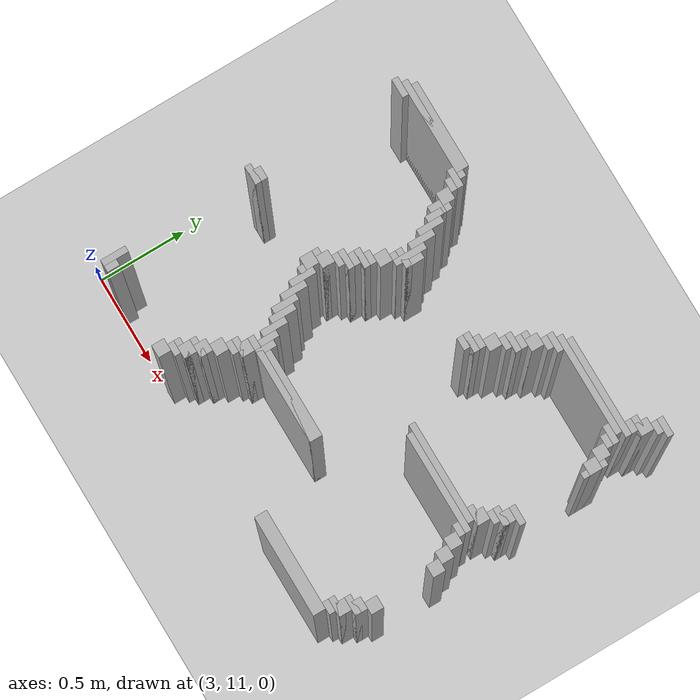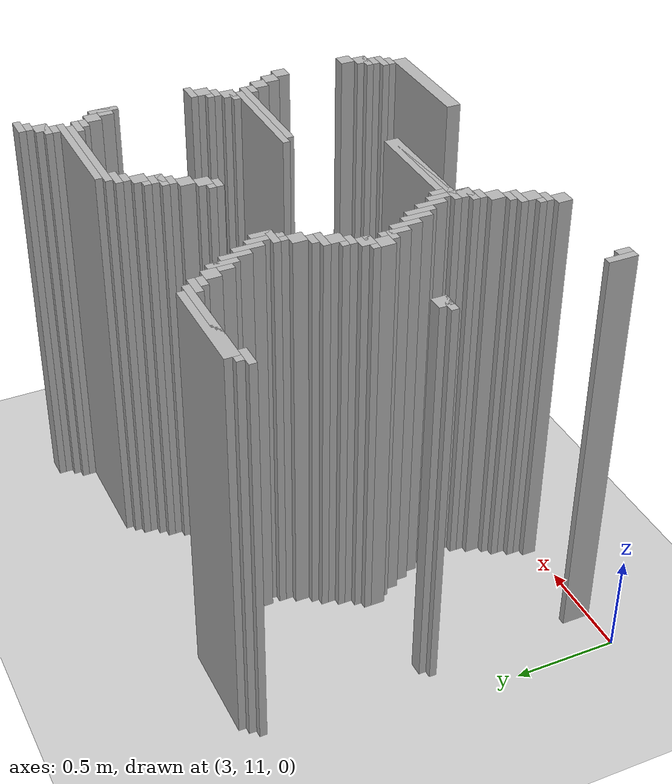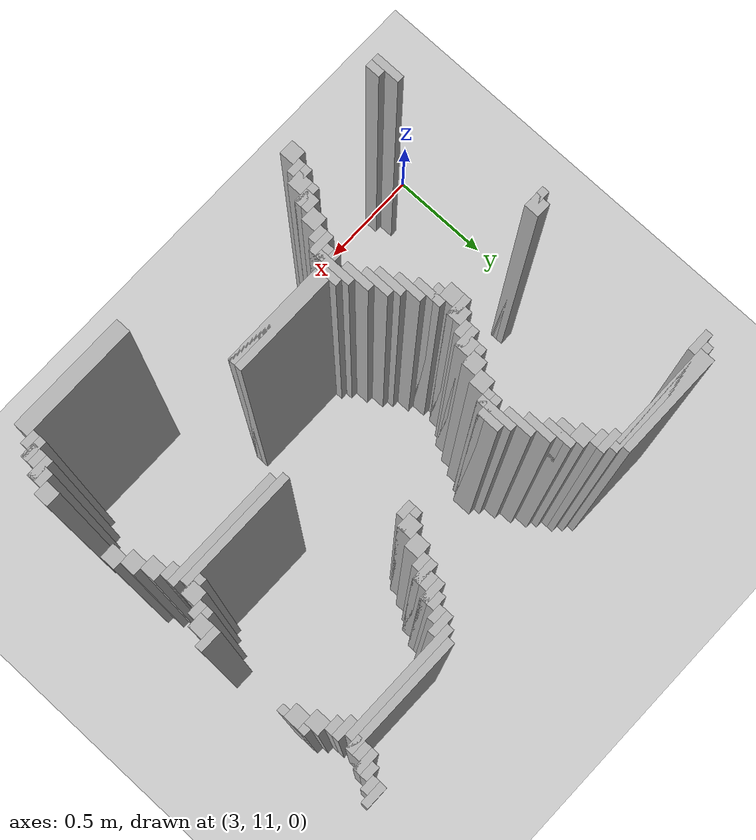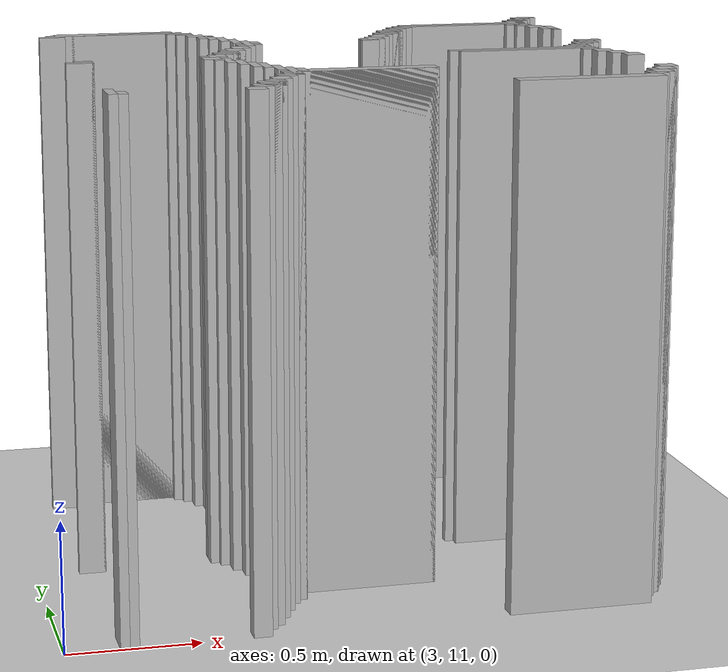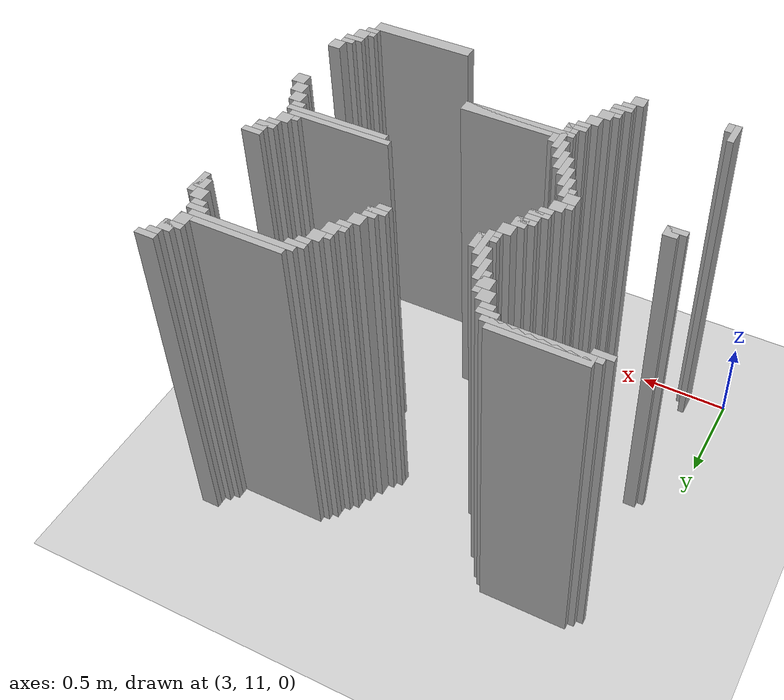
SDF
<sdf version="1.6">
 <world name="slam_world">
  <model name="ground_plane">
   <static>true</static>
   <link name="link">
    <collision name="collision">
     <geometry><plane><normal>0 0 1</normal><size>100 100</size></plane></geometry>
    </collision>
    <visual name="visual">
     <geometry><plane><normal>0 0 1</normal><size>100 100</size></plane></geometry>
     <material>
      <ambient>0.8 0.8 0.8 1</ambient>
      <diffuse>0.8 0.8 0.8 1</diffuse>
      <specular>0.8 0.8 0.8 1</specular>
     </material>
    </visual>
   </link>
  </model>
  <model name="wall_1448">
   <static>true</static>
   <pose>5.307424593967517 12.929234338747099 1.0 0 0 0</pose>
   <link name="link">
    <collision name="collision">
     <geometry><box><size>0.10440835266821345 0.03480278422273782 2.0</size></box></geometry>
    </collision>
    <visual name="visual">
     <geometry><box><size>0.10440835266821345 0.03480278422273782 2.0</size></box></geometry>
     <material><ambient>0.5 0.5 0.5 1</ambient><diffuse>0.7 0.7 0.7 1</diffuse></material>
    </visual>
   </link>
  </model>
  <model name="wall_1461">
   <static>true</static>
   <pose>5.290023201856148 12.894431554524362 1.0 0 0 0</pose>
   <link name="link">
    <collision name="collision">
     <geometry><box><size>0.06960556844547564 0.03480278422273782 2.0</size></box></geometry>
    </collision>
    <visual name="visual">
     <geometry><box><size>0.06960556844547564 0.03480278422273782 2.0</size></box></geometry>
     <material><ambient>0.5 0.5 0.5 1</ambient><diffuse>0.7 0.7 0.7 1</diffuse></material>
    </visual>
   </link>
  </model>
  <model name="wall_1471">
   <static>true</static>
   <pose>5.25522041763341 12.842227378190255 1.0 0 0 0</pose>
   <link name="link">
    <collision name="collision">
     <geometry><box><size>0.06960556844547564 0.06960556844547564 2.0</size></box></geometry>
    </collision>
    <visual name="visual">
     <geometry><box><size>0.06960556844547564 0.06960556844547564 2.0</size></box></geometry>
     <material><ambient>0.5 0.5 0.5 1</ambient><diffuse>0.7 0.7 0.7 1</diffuse></material>
    </visual>
   </link>
  </model>
  <model name="wall_1486">
   <static>true</static>
   <pose>5.237819025522041 12.824825986078885 1.0 0 0 0</pose>
   <link name="link">
    <collision name="collision">
     <geometry><box><size>0.10440835266821345 0.03480278422273782 2.0</size></box></geometry>
    </collision>
    <visual name="visual">
     <geometry><box><size>0.10440835266821345 0.03480278422273782 2.0</size></box></geometry>
     <material><ambient>0.5 0.5 0.5 1</ambient><diffuse>0.7 0.7 0.7 1</diffuse></material>
    </visual>
   </link>
  </model>
  <model name="wall_1499">
   <static>true</static>
   <pose>5.220417633410673 12.772621809744779 1.0 0 0 0</pose>
   <link name="link">
    <collision name="collision">
     <geometry><box><size>0.06960556844547564 0.06960556844547564 2.0</size></box></geometry>
    </collision>
    <visual name="visual">
     <geometry><box><size>0.06960556844547564 0.06960556844547564 2.0</size></box></geometry>
     <material><ambient>0.5 0.5 0.5 1</ambient><diffuse>0.7 0.7 0.7 1</diffuse></material>
    </visual>
   </link>
  </model>
  <model name="wall_1509">
   <static>true</static>
   <pose>3.480278422273782 12.737819025522041 1.0 0 0 0</pose>
   <link name="link">
    <collision name="collision">
     <geometry><box><size>0.4872389791183295 0.06960556844547564 2.0</size></box></geometry>
    </collision>
    <visual name="visual">
     <geometry><box><size>0.4872389791183295 0.06960556844547564 2.0</size></box></geometry>
     <material><ambient>0.5 0.5 0.5 1</ambient><diffuse>0.7 0.7 0.7 1</diffuse></material>
    </visual>
   </link>
  </model>
  <model name="wall_1510">
   <static>true</static>
   <pose>4.976798143851508 12.75522041763341 1.0 0 0 0</pose>
   <link name="link">
    <collision name="collision">
     <geometry><box><size>0.5568445475638051 0.03480278422273782 2.0</size></box></geometry>
    </collision>
    <visual name="visual">
     <geometry><box><size>0.5568445475638051 0.03480278422273782 2.0</size></box></geometry>
     <material><ambient>0.5 0.5 0.5 1</ambient><diffuse>0.7 0.7 0.7 1</diffuse></material>
    </visual>
   </link>
  </model>
  <model name="wall_1522">
   <static>true</static>
   <pose>3.480278422273782 12.720417633410673 1.0 0 0 0</pose>
   <link name="link">
    <collision name="collision">
     <geometry><box><size>0.5568445475638051 0.03480278422273782 2.0</size></box></geometry>
    </collision>
    <visual name="visual">
     <geometry><box><size>0.5568445475638051 0.03480278422273782 2.0</size></box></geometry>
     <material><ambient>0.5 0.5 0.5 1</ambient><diffuse>0.7 0.7 0.7 1</diffuse></material>
    </visual>
   </link>
  </model>
  <model name="wall_1523">
   <static>true</static>
   <pose>4.94199535962877 12.720417633410673 1.0 0 0 0</pose>
   <link name="link">
    <collision name="collision">
     <geometry><box><size>0.5568445475638051 0.03480278422273782 2.0</size></box></geometry>
    </collision>
    <visual name="visual">
     <geometry><box><size>0.5568445475638051 0.03480278422273782 2.0</size></box></geometry>
     <material><ambient>0.5 0.5 0.5 1</ambient><diffuse>0.7 0.7 0.7 1</diffuse></material>
    </visual>
   </link>
  </model>
  <model name="wall_1532">
   <static>true</static>
   <pose>3.219257540603248 12.685614849187935 1.0 0 0 0</pose>
   <link name="link">
    <collision name="collision">
     <geometry><box><size>0.10440835266821345 0.03480278422273782 2.0</size></box></geometry>
    </collision>
    <visual name="visual">
     <geometry><box><size>0.10440835266821345 0.03480278422273782 2.0</size></box></geometry>
     <material><ambient>0.5 0.5 0.5 1</ambient><diffuse>0.7 0.7 0.7 1</diffuse></material>
    </visual>
   </link>
  </model>
  <model name="wall_1533">
   <static>true</static>
   <pose>3.741299303944315 12.685614849187935 1.0 0 0 0</pose>
   <link name="link">
    <collision name="collision">
     <geometry><box><size>0.10440835266821345 0.03480278422273782 2.0</size></box></geometry>
    </collision>
    <visual name="visual">
     <geometry><box><size>0.10440835266821345 0.03480278422273782 2.0</size></box></geometry>
     <material><ambient>0.5 0.5 0.5 1</ambient><diffuse>0.7 0.7 0.7 1</diffuse></material>
    </visual>
   </link>
  </model>
  <model name="wall_1534">
   <static>true</static>
   <pose>4.6809744779582365 12.685614849187935 1.0 0 0 0</pose>
   <link name="link">
    <collision name="collision">
     <geometry><box><size>0.10440835266821345 0.03480278422273782 2.0</size></box></geometry>
    </collision>
    <visual name="visual">
     <geometry><box><size>0.10440835266821345 0.03480278422273782 2.0</size></box></geometry>
     <material><ambient>0.5 0.5 0.5 1</ambient><diffuse>0.7 0.7 0.7 1</diffuse></material>
    </visual>
   </link>
  </model>
  <model name="wall_1535">
   <static>true</static>
   <pose>5.203016241299304 12.685614849187935 1.0 0 0 0</pose>
   <link name="link">
    <collision name="collision">
     <geometry><box><size>0.10440835266821345 0.03480278422273782 2.0</size></box></geometry>
    </collision>
    <visual name="visual">
     <geometry><box><size>0.10440835266821345 0.03480278422273782 2.0</size></box></geometry>
     <material><ambient>0.5 0.5 0.5 1</ambient><diffuse>0.7 0.7 0.7 1</diffuse></material>
    </visual>
   </link>
  </model>
  <model name="wall_1546">
   <static>true</static>
   <pose>3.7587006960556844 12.650812064965196 1.0 0 0 0</pose>
   <link name="link">
    <collision name="collision">
     <geometry><box><size>0.06960556844547564 0.03480278422273782 2.0</size></box></geometry>
    </collision>
    <visual name="visual">
     <geometry><box><size>0.06960556844547564 0.03480278422273782 2.0</size></box></geometry>
     <material><ambient>0.5 0.5 0.5 1</ambient><diffuse>0.7 0.7 0.7 1</diffuse></material>
    </visual>
   </link>
  </model>
  <model name="wall_1547">
   <static>true</static>
   <pose>4.663573085846868 12.650812064965196 1.0 0 0 0</pose>
   <link name="link">
    <collision name="collision">
     <geometry><box><size>0.06960556844547564 0.03480278422273782 2.0</size></box></geometry>
    </collision>
    <visual name="visual">
     <geometry><box><size>0.06960556844547564 0.03480278422273782 2.0</size></box></geometry>
     <material><ambient>0.5 0.5 0.5 1</ambient><diffuse>0.7 0.7 0.7 1</diffuse></material>
    </visual>
   </link>
  </model>
  <model name="wall_1548">
   <static>true</static>
   <pose>5.220417633410673 12.650812064965196 1.0 0 0 0</pose>
   <link name="link">
    <collision name="collision">
     <geometry><box><size>0.06960556844547564 0.03480278422273782 2.0</size></box></geometry>
    </collision>
    <visual name="visual">
     <geometry><box><size>0.06960556844547564 0.03480278422273782 2.0</size></box></geometry>
     <material><ambient>0.5 0.5 0.5 1</ambient><diffuse>0.7 0.7 0.7 1</diffuse></material>
    </visual>
   </link>
  </model>
  <model name="wall_1558">
   <static>true</static>
   <pose>3.793503480278422 12.59860788863109 1.0 0 0 0</pose>
   <link name="link">
    <collision name="collision">
     <geometry><box><size>0.06960556844547564 0.06960556844547564 2.0</size></box></geometry>
    </collision>
    <visual name="visual">
     <geometry><box><size>0.06960556844547564 0.06960556844547564 2.0</size></box></geometry>
     <material><ambient>0.5 0.5 0.5 1</ambient><diffuse>0.7 0.7 0.7 1</diffuse></material>
    </visual>
   </link>
  </model>
  <model name="wall_1559">
   <static>true</static>
   <pose>4.6287703016241295 12.59860788863109 1.0 0 0 0</pose>
   <link name="link">
    <collision name="collision">
     <geometry><box><size>0.06960556844547564 0.06960556844547564 2.0</size></box></geometry>
    </collision>
    <visual name="visual">
     <geometry><box><size>0.06960556844547564 0.06960556844547564 2.0</size></box></geometry>
     <material><ambient>0.5 0.5 0.5 1</ambient><diffuse>0.7 0.7 0.7 1</diffuse></material>
    </visual>
   </link>
  </model>
  <model name="wall_1560">
   <static>true</static>
   <pose>5.25522041763341 12.59860788863109 1.0 0 0 0</pose>
   <link name="link">
    <collision name="collision">
     <geometry><box><size>0.06960556844547564 0.06960556844547564 2.0</size></box></geometry>
    </collision>
    <visual name="visual">
     <geometry><box><size>0.06960556844547564 0.06960556844547564 2.0</size></box></geometry>
     <material><ambient>0.5 0.5 0.5 1</ambient><diffuse>0.7 0.7 0.7 1</diffuse></material>
    </visual>
   </link>
  </model>
  <model name="wall_1571">
   <static>true</static>
   <pose>3.845707656612529 12.529002320185615 1.0 0 0 0</pose>
   <link name="link">
    <collision name="collision">
     <geometry><box><size>0.03480278422273782 0.13921113689095127 2.0</size></box></geometry>
    </collision>
    <visual name="visual">
     <geometry><box><size>0.03480278422273782 0.13921113689095127 2.0</size></box></geometry>
     <material><ambient>0.5 0.5 0.5 1</ambient><diffuse>0.7 0.7 0.7 1</diffuse></material>
    </visual>
   </link>
  </model>
  <model name="wall_1572">
   <static>true</static>
   <pose>4.611368909512761 12.581206496519721 1.0 0 0 0</pose>
   <link name="link">
    <collision name="collision">
     <geometry><box><size>0.10440835266821345 0.03480278422273782 2.0</size></box></geometry>
    </collision>
    <visual name="visual">
     <geometry><box><size>0.10440835266821345 0.03480278422273782 2.0</size></box></geometry>
     <material><ambient>0.5 0.5 0.5 1</ambient><diffuse>0.7 0.7 0.7 1</diffuse></material>
    </visual>
   </link>
  </model>
  <model name="wall_1573">
   <static>true</static>
   <pose>5.307424593967517 12.529002320185615 1.0 0 0 0</pose>
   <link name="link">
    <collision name="collision">
     <geometry><box><size>0.03480278422273782 0.13921113689095127 2.0</size></box></geometry>
    </collision>
    <visual name="visual">
     <geometry><box><size>0.03480278422273782 0.13921113689095127 2.0</size></box></geometry>
     <material><ambient>0.5 0.5 0.5 1</ambient><diffuse>0.7 0.7 0.7 1</diffuse></material>
    </visual>
   </link>
  </model>
  <model name="wall_1583">
   <static>true</static>
   <pose>3.82830626450116 12.529002320185615 1.0 0 0 0</pose>
   <link name="link">
    <collision name="collision">
     <geometry><box><size>0.06960556844547564 0.06960556844547564 2.0</size></box></geometry>
    </collision>
    <visual name="visual">
     <geometry><box><size>0.06960556844547564 0.06960556844547564 2.0</size></box></geometry>
     <material><ambient>0.5 0.5 0.5 1</ambient><diffuse>0.7 0.7 0.7 1</diffuse></material>
    </visual>
   </link>
  </model>
  <model name="wall_1584">
   <static>true</static>
   <pose>4.593967517401392 12.529002320185615 1.0 0 0 0</pose>
   <link name="link">
    <collision name="collision">
     <geometry><box><size>0.06960556844547564 0.06960556844547564 2.0</size></box></geometry>
    </collision>
    <visual name="visual">
     <geometry><box><size>0.06960556844547564 0.06960556844547564 2.0</size></box></geometry>
     <material><ambient>0.5 0.5 0.5 1</ambient><diffuse>0.7 0.7 0.7 1</diffuse></material>
    </visual>
   </link>
  </model>
  <model name="wall_1585">
   <static>true</static>
   <pose>5.290023201856148 12.529002320185615 1.0 0 0 0</pose>
   <link name="link">
    <collision name="collision">
     <geometry><box><size>0.06960556844547564 0.06960556844547564 2.0</size></box></geometry>
    </collision>
    <visual name="visual">
     <geometry><box><size>0.06960556844547564 0.06960556844547564 2.0</size></box></geometry>
     <material><ambient>0.5 0.5 0.5 1</ambient><diffuse>0.7 0.7 0.7 1</diffuse></material>
    </visual>
   </link>
  </model>
  <model name="wall_1595">
   <static>true</static>
   <pose>3.8805104408352666 12.459396751740138 1.0 0 0 0</pose>
   <link name="link">
    <collision name="collision">
     <geometry><box><size>0.03480278422273782 0.13921113689095127 2.0</size></box></geometry>
    </collision>
    <visual name="visual">
     <geometry><box><size>0.03480278422273782 0.13921113689095127 2.0</size></box></geometry>
     <material><ambient>0.5 0.5 0.5 1</ambient><diffuse>0.7 0.7 0.7 1</diffuse></material>
    </visual>
   </link>
  </model>
  <model name="wall_1596">
   <static>true</static>
   <pose>4.576566125290023 12.511600928074245 1.0 0 0 0</pose>
   <link name="link">
    <collision name="collision">
     <geometry><box><size>0.10440835266821345 0.03480278422273782 2.0</size></box></geometry>
    </collision>
    <visual name="visual">
     <geometry><box><size>0.10440835266821345 0.03480278422273782 2.0</size></box></geometry>
     <material><ambient>0.5 0.5 0.5 1</ambient><diffuse>0.7 0.7 0.7 1</diffuse></material>
    </visual>
   </link>
  </model>
  <model name="wall_1607">
   <static>true</static>
   <pose>4.559164733178654 12.476798143851507 1.0 0 0 0</pose>
   <link name="link">
    <collision name="collision">
     <geometry><box><size>0.06960556844547564 0.03480278422273782 2.0</size></box></geometry>
    </collision>
    <visual name="visual">
     <geometry><box><size>0.06960556844547564 0.03480278422273782 2.0</size></box></geometry>
     <material><ambient>0.5 0.5 0.5 1</ambient><diffuse>0.7 0.7 0.7 1</diffuse></material>
    </visual>
   </link>
  </model>
  <model name="wall_1615">
   <static>true</static>
   <pose>3.9153132250580045 12.389791183294664 1.0 0 0 0</pose>
   <link name="link">
    <collision name="collision">
     <geometry><box><size>0.03480278422273782 0.13921113689095127 2.0</size></box></geometry>
    </collision>
    <visual name="visual">
     <geometry><box><size>0.03480278422273782 0.13921113689095127 2.0</size></box></geometry>
     <material><ambient>0.5 0.5 0.5 1</ambient><diffuse>0.7 0.7 0.7 1</diffuse></material>
    </visual>
   </link>
  </model>
  <model name="wall_1616">
   <static>true</static>
   <pose>4.524361948955916 12.424593967517401 1.0 0 0 0</pose>
   <link name="link">
    <collision name="collision">
     <geometry><box><size>0.06960556844547564 0.06960556844547564 2.0</size></box></geometry>
    </collision>
    <visual name="visual">
     <geometry><box><size>0.06960556844547564 0.06960556844547564 2.0</size></box></geometry>
     <material><ambient>0.5 0.5 0.5 1</ambient><diffuse>0.7 0.7 0.7 1</diffuse></material>
    </visual>
   </link>
  </model>
  <model name="wall_1628">
   <static>true</static>
   <pose>3.9501160092807424 12.302784222737818 1.0 0 0 0</pose>
   <link name="link">
    <collision name="collision">
     <geometry><box><size>0.03480278422273782 0.17401392111368907 2.0</size></box></geometry>
    </collision>
    <visual name="visual">
     <geometry><box><size>0.03480278422273782 0.17401392111368907 2.0</size></box></geometry>
     <material><ambient>0.5 0.5 0.5 1</ambient><diffuse>0.7 0.7 0.7 1</diffuse></material>
    </visual>
   </link>
  </model>
  <model name="wall_1629">
   <static>true</static>
   <pose>4.489559164733178 12.354988399071924 1.0 0 0 0</pose>
   <link name="link">
    <collision name="collision">
     <geometry><box><size>0.06960556844547564 0.06960556844547564 2.0</size></box></geometry>
    </collision>
    <visual name="visual">
     <geometry><box><size>0.06960556844547564 0.06960556844547564 2.0</size></box></geometry>
     <material><ambient>0.5 0.5 0.5 1</ambient><diffuse>0.7 0.7 0.7 1</diffuse></material>
    </visual>
   </link>
  </model>
  <model name="wall_1641">
   <static>true</static>
   <pose>3.98491879350348 12.302784222737818 1.0 0 0 0</pose>
   <link name="link">
    <collision name="collision">
     <geometry><box><size>0.03480278422273782 0.10440835266821345 2.0</size></box></geometry>
    </collision>
    <visual name="visual">
     <geometry><box><size>0.03480278422273782 0.10440835266821345 2.0</size></box></geometry>
     <material><ambient>0.5 0.5 0.5 1</ambient><diffuse>0.7 0.7 0.7 1</diffuse></material>
    </visual>
   </link>
  </model>
  <model name="wall_1642">
   <static>true</static>
   <pose>4.472157772621809 12.337587006960556 1.0 0 0 0</pose>
   <link name="link">
    <collision name="collision">
     <geometry><box><size>0.10440835266821345 0.03480278422273782 2.0</size></box></geometry>
    </collision>
    <visual name="visual">
     <geometry><box><size>0.10440835266821345 0.03480278422273782 2.0</size></box></geometry>
     <material><ambient>0.5 0.5 0.5 1</ambient><diffuse>0.7 0.7 0.7 1</diffuse></material>
    </visual>
   </link>
  </model>
  <model name="wall_1653">
   <static>true</static>
   <pose>4.454756380510441 12.302784222737818 1.0 0 0 0</pose>
   <link name="link">
    <collision name="collision">
     <geometry><box><size>0.06960556844547564 0.03480278422273782 2.0</size></box></geometry>
    </collision>
    <visual name="visual">
     <geometry><box><size>0.06960556844547564 0.03480278422273782 2.0</size></box></geometry>
     <material><ambient>0.5 0.5 0.5 1</ambient><diffuse>0.7 0.7 0.7 1</diffuse></material>
    </visual>
   </link>
  </model>
  <model name="wall_1667">
   <static>true</static>
   <pose>3.9501160092807424 12.267981438515081 1.0 0 0 0</pose>
   <link name="link">
    <collision name="collision">
     <geometry><box><size>0.10440835266821345 0.03480278422273782 2.0</size></box></geometry>
    </collision>
    <visual name="visual">
     <geometry><box><size>0.10440835266821345 0.03480278422273782 2.0</size></box></geometry>
     <material><ambient>0.5 0.5 0.5 1</ambient><diffuse>0.7 0.7 0.7 1</diffuse></material>
    </visual>
   </link>
  </model>
  <model name="wall_1684">
   <static>true</static>
   <pose>3.932714617169373 12.233178654292344 1.0 0 0 0</pose>
   <link name="link">
    <collision name="collision">
     <geometry><box><size>0.06960556844547564 0.03480278422273782 2.0</size></box></geometry>
    </collision>
    <visual name="visual">
     <geometry><box><size>0.06960556844547564 0.03480278422273782 2.0</size></box></geometry>
     <material><ambient>0.5 0.5 0.5 1</ambient><diffuse>0.7 0.7 0.7 1</diffuse></material>
    </visual>
   </link>
  </model>
  <model name="wall_1698">
   <static>true</static>
   <pose>3.897911832946636 12.180974477958236 1.0 0 0 0</pose>
   <link name="link">
    <collision name="collision">
     <geometry><box><size>0.06960556844547564 0.06960556844547564 2.0</size></box></geometry>
    </collision>
    <visual name="visual">
     <geometry><box><size>0.06960556844547564 0.06960556844547564 2.0</size></box></geometry>
     <material><ambient>0.5 0.5 0.5 1</ambient><diffuse>0.7 0.7 0.7 1</diffuse></material>
    </visual>
   </link>
  </model>
  <model name="wall_1712">
   <static>true</static>
   <pose>3.863109048723898 12.11136890951276 1.0 0 0 0</pose>
   <link name="link">
    <collision name="collision">
     <geometry><box><size>0.06960556844547564 0.06960556844547564 2.0</size></box></geometry>
    </collision>
    <visual name="visual">
     <geometry><box><size>0.06960556844547564 0.06960556844547564 2.0</size></box></geometry>
     <material><ambient>0.5 0.5 0.5 1</ambient><diffuse>0.7 0.7 0.7 1</diffuse></material>
    </visual>
   </link>
  </model>
  <model name="wall_1726">
   <static>true</static>
   <pose>3.845707656612529 12.093967517401392 1.0 0 0 0</pose>
   <link name="link">
    <collision name="collision">
     <geometry><box><size>0.10440835266821345 0.03480278422273782 2.0</size></box></geometry>
    </collision>
    <visual name="visual">
     <geometry><box><size>0.10440835266821345 0.03480278422273782 2.0</size></box></geometry>
     <material><ambient>0.5 0.5 0.5 1</ambient><diffuse>0.7 0.7 0.7 1</diffuse></material>
    </visual>
   </link>
  </model>
  <model name="wall_1727">
   <static>true</static>
   <pose>5.307424593967517 12.093967517401392 1.0 0 0 0</pose>
   <link name="link">
    <collision name="collision">
     <geometry><box><size>0.10440835266821345 0.03480278422273782 2.0</size></box></geometry>
    </collision>
    <visual name="visual">
     <geometry><box><size>0.10440835266821345 0.03480278422273782 2.0</size></box></geometry>
     <material><ambient>0.5 0.5 0.5 1</ambient><diffuse>0.7 0.7 0.7 1</diffuse></material>
    </visual>
   </link>
  </model>
  <model name="wall_1739">
   <static>true</static>
   <pose>3.82830626450116 12.041763341067284 1.0 0 0 0</pose>
   <link name="link">
    <collision name="collision">
     <geometry><box><size>0.06960556844547564 0.06960556844547564 2.0</size></box></geometry>
    </collision>
    <visual name="visual">
     <geometry><box><size>0.06960556844547564 0.06960556844547564 2.0</size></box></geometry>
     <material><ambient>0.5 0.5 0.5 1</ambient><diffuse>0.7 0.7 0.7 1</diffuse></material>
    </visual>
   </link>
  </model>
  <model name="wall_1740">
   <static>true</static>
   <pose>5.290023201856148 12.041763341067284 1.0 0 0 0</pose>
   <link name="link">
    <collision name="collision">
     <geometry><box><size>0.06960556844547564 0.06960556844547564 2.0</size></box></geometry>
    </collision>
    <visual name="visual">
     <geometry><box><size>0.06960556844547564 0.06960556844547564 2.0</size></box></geometry>
     <material><ambient>0.5 0.5 0.5 1</ambient><diffuse>0.7 0.7 0.7 1</diffuse></material>
    </visual>
   </link>
  </model>
  <model name="wall_1750">
   <static>true</static>
   <pose>3.810904872389791 12.024361948955915 1.0 0 0 0</pose>
   <link name="link">
    <collision name="collision">
     <geometry><box><size>0.10440835266821345 0.03480278422273782 2.0</size></box></geometry>
    </collision>
    <visual name="visual">
     <geometry><box><size>0.10440835266821345 0.03480278422273782 2.0</size></box></geometry>
     <material><ambient>0.5 0.5 0.5 1</ambient><diffuse>0.7 0.7 0.7 1</diffuse></material>
    </visual>
   </link>
  </model>
  <model name="wall_1751">
   <static>true</static>
   <pose>5.27262180974478 12.024361948955915 1.0 0 0 0</pose>
   <link name="link">
    <collision name="collision">
     <geometry><box><size>0.10440835266821345 0.03480278422273782 2.0</size></box></geometry>
    </collision>
    <visual name="visual">
     <geometry><box><size>0.10440835266821345 0.03480278422273782 2.0</size></box></geometry>
     <material><ambient>0.5 0.5 0.5 1</ambient><diffuse>0.7 0.7 0.7 1</diffuse></material>
    </visual>
   </link>
  </model>
  <model name="wall_1762">
   <static>true</static>
   <pose>3.793503480278422 11.989559164733178 1.0 0 0 0</pose>
   <link name="link">
    <collision name="collision">
     <geometry><box><size>0.06960556844547564 0.03480278422273782 2.0</size></box></geometry>
    </collision>
    <visual name="visual">
     <geometry><box><size>0.06960556844547564 0.03480278422273782 2.0</size></box></geometry>
     <material><ambient>0.5 0.5 0.5 1</ambient><diffuse>0.7 0.7 0.7 1</diffuse></material>
    </visual>
   </link>
  </model>
  <model name="wall_1763">
   <static>true</static>
   <pose>5.25522041763341 11.989559164733178 1.0 0 0 0</pose>
   <link name="link">
    <collision name="collision">
     <geometry><box><size>0.06960556844547564 0.03480278422273782 2.0</size></box></geometry>
    </collision>
    <visual name="visual">
     <geometry><box><size>0.06960556844547564 0.03480278422273782 2.0</size></box></geometry>
     <material><ambient>0.5 0.5 0.5 1</ambient><diffuse>0.7 0.7 0.7 1</diffuse></material>
    </visual>
   </link>
  </model>
  <model name="wall_1772">
   <static>true</static>
   <pose>3.7587006960556844 11.937354988399072 1.0 0 0 0</pose>
   <link name="link">
    <collision name="collision">
     <geometry><box><size>0.06960556844547564 0.06960556844547564 2.0</size></box></geometry>
    </collision>
    <visual name="visual">
     <geometry><box><size>0.06960556844547564 0.06960556844547564 2.0</size></box></geometry>
     <material><ambient>0.5 0.5 0.5 1</ambient><diffuse>0.7 0.7 0.7 1</diffuse></material>
    </visual>
   </link>
  </model>
  <model name="wall_1773">
   <static>true</static>
   <pose>5.220417633410673 11.937354988399072 1.0 0 0 0</pose>
   <link name="link">
    <collision name="collision">
     <geometry><box><size>0.06960556844547564 0.06960556844547564 2.0</size></box></geometry>
    </collision>
    <visual name="visual">
     <geometry><box><size>0.06960556844547564 0.06960556844547564 2.0</size></box></geometry>
     <material><ambient>0.5 0.5 0.5 1</ambient><diffuse>0.7 0.7 0.7 1</diffuse></material>
    </visual>
   </link>
  </model>
  <model name="wall_1786">
   <static>true</static>
   <pose>3.741299303944315 11.919953596287703 1.0 0 0 0</pose>
   <link name="link">
    <collision name="collision">
     <geometry><box><size>0.10440835266821345 0.03480278422273782 2.0</size></box></geometry>
    </collision>
    <visual name="visual">
     <geometry><box><size>0.10440835266821345 0.03480278422273782 2.0</size></box></geometry>
     <material><ambient>0.5 0.5 0.5 1</ambient><diffuse>0.7 0.7 0.7 1</diffuse></material>
    </visual>
   </link>
  </model>
  <model name="wall_1787">
   <static>true</static>
   <pose>5.203016241299304 11.919953596287703 1.0 0 0 0</pose>
   <link name="link">
    <collision name="collision">
     <geometry><box><size>0.10440835266821345 0.03480278422273782 2.0</size></box></geometry>
    </collision>
    <visual name="visual">
     <geometry><box><size>0.10440835266821345 0.03480278422273782 2.0</size></box></geometry>
     <material><ambient>0.5 0.5 0.5 1</ambient><diffuse>0.7 0.7 0.7 1</diffuse></material>
    </visual>
   </link>
  </model>
  <model name="wall_1799">
   <static>true</static>
   <pose>3.236658932714617 11.867749419953595 1.0 0 0 0</pose>
   <link name="link">
    <collision name="collision">
     <geometry><box><size>0.06960556844547564 0.06960556844547564 2.0</size></box></geometry>
    </collision>
    <visual name="visual">
     <geometry><box><size>0.06960556844547564 0.06960556844547564 2.0</size></box></geometry>
     <material><ambient>0.5 0.5 0.5 1</ambient><diffuse>0.7 0.7 0.7 1</diffuse></material>
    </visual>
   </link>
  </model>
  <model name="wall_1800">
   <static>true</static>
   <pose>3.7238979118329465 11.867749419953595 1.0 0 0 0</pose>
   <link name="link">
    <collision name="collision">
     <geometry><box><size>0.06960556844547564 0.06960556844547564 2.0</size></box></geometry>
    </collision>
    <visual name="visual">
     <geometry><box><size>0.06960556844547564 0.06960556844547564 2.0</size></box></geometry>
     <material><ambient>0.5 0.5 0.5 1</ambient><diffuse>0.7 0.7 0.7 1</diffuse></material>
    </visual>
   </link>
  </model>
  <model name="wall_1801">
   <static>true</static>
   <pose>4.94199535962877 11.885150812064964 1.0 0 0 0</pose>
   <link name="link">
    <collision name="collision">
     <geometry><box><size>0.5568445475638051 0.03480278422273782 2.0</size></box></geometry>
    </collision>
    <visual name="visual">
     <geometry><box><size>0.5568445475638051 0.03480278422273782 2.0</size></box></geometry>
     <material><ambient>0.5 0.5 0.5 1</ambient><diffuse>0.7 0.7 0.7 1</diffuse></material>
    </visual>
   </link>
  </model>
  <model name="wall_1811">
   <static>true</static>
   <pose>3.219257540603248 11.850348027842227 1.0 0 0 0</pose>
   <link name="link">
    <collision name="collision">
     <geometry><box><size>0.10440835266821345 0.03480278422273782 2.0</size></box></geometry>
    </collision>
    <visual name="visual">
     <geometry><box><size>0.10440835266821345 0.03480278422273782 2.0</size></box></geometry>
     <material><ambient>0.5 0.5 0.5 1</ambient><diffuse>0.7 0.7 0.7 1</diffuse></material>
    </visual>
   </link>
  </model>
  <model name="wall_1812">
   <static>true</static>
   <pose>3.776102088167053 11.79814385150812 1.0 0 0 0</pose>
   <link name="link">
    <collision name="collision">
     <geometry><box><size>0.03480278422273782 0.13921113689095127 2.0</size></box></geometry>
    </collision>
    <visual name="visual">
     <geometry><box><size>0.03480278422273782 0.13921113689095127 2.0</size></box></geometry>
     <material><ambient>0.5 0.5 0.5 1</ambient><diffuse>0.7 0.7 0.7 1</diffuse></material>
    </visual>
   </link>
  </model>
  <model name="wall_1813">
   <static>true</static>
   <pose>4.976798143851508 11.850348027842227 1.0 0 0 0</pose>
   <link name="link">
    <collision name="collision">
     <geometry><box><size>0.5568445475638051 0.03480278422273782 2.0</size></box></geometry>
    </collision>
    <visual name="visual">
     <geometry><box><size>0.5568445475638051 0.03480278422273782 2.0</size></box></geometry>
     <material><ambient>0.5 0.5 0.5 1</ambient><diffuse>0.7 0.7 0.7 1</diffuse></material>
    </visual>
   </link>
  </model>
  <model name="wall_1825">
   <static>true</static>
   <pose>3.7587006960556844 11.81554524361949 1.0 0 0 0</pose>
   <link name="link">
    <collision name="collision">
     <geometry><box><size>0.06960556844547564 0.03480278422273782 2.0</size></box></geometry>
    </collision>
    <visual name="visual">
     <geometry><box><size>0.06960556844547564 0.03480278422273782 2.0</size></box></geometry>
     <material><ambient>0.5 0.5 0.5 1</ambient><diffuse>0.7 0.7 0.7 1</diffuse></material>
    </visual>
   </link>
  </model>
  <model name="wall_1826">
   <static>true</static>
   <pose>5.220417633410673 11.81554524361949 1.0 0 0 0</pose>
   <link name="link">
    <collision name="collision">
     <geometry><box><size>0.06960556844547564 0.03480278422273782 2.0</size></box></geometry>
    </collision>
    <visual name="visual">
     <geometry><box><size>0.06960556844547564 0.03480278422273782 2.0</size></box></geometry>
     <material><ambient>0.5 0.5 0.5 1</ambient><diffuse>0.7 0.7 0.7 1</diffuse></material>
    </visual>
   </link>
  </model>
  <model name="wall_1839">
   <static>true</static>
   <pose>3.810904872389791 11.728538283062644 1.0 0 0 0</pose>
   <link name="link">
    <collision name="collision">
     <geometry><box><size>0.03480278422273782 0.13921113689095127 2.0</size></box></geometry>
    </collision>
    <visual name="visual">
     <geometry><box><size>0.03480278422273782 0.13921113689095127 2.0</size></box></geometry>
     <material><ambient>0.5 0.5 0.5 1</ambient><diffuse>0.7 0.7 0.7 1</diffuse></material>
    </visual>
   </link>
  </model>
  <model name="wall_1840">
   <static>true</static>
   <pose>5.25522041763341 11.763341067285383 1.0 0 0 0</pose>
   <link name="link">
    <collision name="collision">
     <geometry><box><size>0.06960556844547564 0.06960556844547564 2.0</size></box></geometry>
    </collision>
    <visual name="visual">
     <geometry><box><size>0.06960556844547564 0.06960556844547564 2.0</size></box></geometry>
     <material><ambient>0.5 0.5 0.5 1</ambient><diffuse>0.7 0.7 0.7 1</diffuse></material>
    </visual>
   </link>
  </model>
  <model name="wall_1853">
   <static>true</static>
   <pose>3.845707656612529 11.658932714617169 1.0 0 0 0</pose>
   <link name="link">
    <collision name="collision">
     <geometry><box><size>0.03480278422273782 0.13921113689095127 2.0</size></box></geometry>
    </collision>
    <visual name="visual">
     <geometry><box><size>0.03480278422273782 0.13921113689095127 2.0</size></box></geometry>
     <material><ambient>0.5 0.5 0.5 1</ambient><diffuse>0.7 0.7 0.7 1</diffuse></material>
    </visual>
   </link>
  </model>
  <model name="wall_1854">
   <static>true</static>
   <pose>5.290023201856148 11.693735498839906 1.0 0 0 0</pose>
   <link name="link">
    <collision name="collision">
     <geometry><box><size>0.06960556844547564 0.06960556844547564 2.0</size></box></geometry>
    </collision>
    <visual name="visual">
     <geometry><box><size>0.06960556844547564 0.06960556844547564 2.0</size></box></geometry>
     <material><ambient>0.5 0.5 0.5 1</ambient><diffuse>0.7 0.7 0.7 1</diffuse></material>
    </visual>
   </link>
  </model>
  <model name="wall_1867">
   <static>true</static>
   <pose>3.8805104408352666 11.624129930394432 1.0 0 0 0</pose>
   <link name="link">
    <collision name="collision">
     <geometry><box><size>0.03480278422273782 0.13921113689095127 2.0</size></box></geometry>
    </collision>
    <visual name="visual">
     <geometry><box><size>0.03480278422273782 0.13921113689095127 2.0</size></box></geometry>
     <material><ambient>0.5 0.5 0.5 1</ambient><diffuse>0.7 0.7 0.7 1</diffuse></material>
    </visual>
   </link>
  </model>
  <model name="wall_1879">
   <static>true</static>
   <pose>5.324825986078886 11.624129930394432 1.0 0 0 0</pose>
   <link name="link">
    <collision name="collision">
     <geometry><box><size>0.06960556844547564 0.06960556844547564 2.0</size></box></geometry>
    </collision>
    <visual name="visual">
     <geometry><box><size>0.06960556844547564 0.06960556844547564 2.0</size></box></geometry>
     <material><ambient>0.5 0.5 0.5 1</ambient><diffuse>0.7 0.7 0.7 1</diffuse></material>
    </visual>
   </link>
  </model>
  <model name="wall_1890">
   <static>true</static>
   <pose>3.9153132250580045 11.554524361948955 1.0 0 0 0</pose>
   <link name="link">
    <collision name="collision">
     <geometry><box><size>0.03480278422273782 0.13921113689095127 2.0</size></box></geometry>
    </collision>
    <visual name="visual">
     <geometry><box><size>0.03480278422273782 0.13921113689095127 2.0</size></box></geometry>
     <material><ambient>0.5 0.5 0.5 1</ambient><diffuse>0.7 0.7 0.7 1</diffuse></material>
    </visual>
   </link>
  </model>
  <model name="wall_1910">
   <static>true</static>
   <pose>3.9501160092807424 11.450116009280743 1.0 0 0 0</pose>
   <link name="link">
    <collision name="collision">
     <geometry><box><size>0.03480278422273782 0.2088167053364269 2.0</size></box></geometry>
    </collision>
    <visual name="visual">
     <geometry><box><size>0.03480278422273782 0.2088167053364269 2.0</size></box></geometry>
     <material><ambient>0.5 0.5 0.5 1</ambient><diffuse>0.7 0.7 0.7 1</diffuse></material>
    </visual>
   </link>
  </model>
  <model name="wall_1923">
   <static>true</static>
   <pose>3.98491879350348 11.467517401392112 1.0 0 0 0</pose>
   <link name="link">
    <collision name="collision">
     <geometry><box><size>0.03480278422273782 0.10440835266821345 2.0</size></box></geometry>
    </collision>
    <visual name="visual">
     <geometry><box><size>0.03480278422273782 0.10440835266821345 2.0</size></box></geometry>
     <material><ambient>0.5 0.5 0.5 1</ambient><diffuse>0.7 0.7 0.7 1</diffuse></material>
    </visual>
   </link>
  </model>
  <model name="wall_1936">
   <static>true</static>
   <pose>4.2459396751740135 11.450116009280743 1.0 0 0 0</pose>
   <link name="link">
    <collision name="collision">
     <geometry><box><size>0.4872389791183295 0.06960556844547564 2.0</size></box></geometry>
    </collision>
    <visual name="visual">
     <geometry><box><size>0.4872389791183295 0.06960556844547564 2.0</size></box></geometry>
     <material><ambient>0.5 0.5 0.5 1</ambient><diffuse>0.7 0.7 0.7 1</diffuse></material>
    </visual>
   </link>
  </model>
  <model name="wall_1948">
   <static>true</static>
   <pose>4.193735498839907 11.432714617169372 1.0 0 0 0</pose>
   <link name="link">
    <collision name="collision">
     <geometry><box><size>0.5916473317865429 0.03480278422273782 2.0</size></box></geometry>
    </collision>
    <visual name="visual">
     <geometry><box><size>0.5916473317865429 0.03480278422273782 2.0</size></box></geometry>
     <material><ambient>0.5 0.5 0.5 1</ambient><diffuse>0.7 0.7 0.7 1</diffuse></material>
    </visual>
   </link>
  </model>
  <model name="wall_1963">
   <static>true</static>
   <pose>3.932714617169373 11.380510440835266 1.0 0 0 0</pose>
   <link name="link">
    <collision name="collision">
     <geometry><box><size>0.06960556844547564 0.06960556844547564 2.0</size></box></geometry>
    </collision>
    <visual name="visual">
     <geometry><box><size>0.06960556844547564 0.06960556844547564 2.0</size></box></geometry>
     <material><ambient>0.5 0.5 0.5 1</ambient><diffuse>0.7 0.7 0.7 1</diffuse></material>
    </visual>
   </link>
  </model>
  <model name="wall_1980">
   <static>true</static>
   <pose>3.9153132250580045 11.363109048723897 1.0 0 0 0</pose>
   <link name="link">
    <collision name="collision">
     <geometry><box><size>0.10440835266821345 0.03480278422273782 2.0</size></box></geometry>
    </collision>
    <visual name="visual">
     <geometry><box><size>0.10440835266821345 0.03480278422273782 2.0</size></box></geometry>
     <material><ambient>0.5 0.5 0.5 1</ambient><diffuse>0.7 0.7 0.7 1</diffuse></material>
    </visual>
   </link>
  </model>
  <model name="wall_1995">
   <static>true</static>
   <pose>3.897911832946636 11.32830626450116 1.0 0 0 0</pose>
   <link name="link">
    <collision name="collision">
     <geometry><box><size>0.06960556844547564 0.03480278422273782 2.0</size></box></geometry>
    </collision>
    <visual name="visual">
     <geometry><box><size>0.06960556844547564 0.03480278422273782 2.0</size></box></geometry>
     <material><ambient>0.5 0.5 0.5 1</ambient><diffuse>0.7 0.7 0.7 1</diffuse></material>
    </visual>
   </link>
  </model>
  <model name="wall_2009">
   <static>true</static>
   <pose>3.863109048723898 11.276102088167052 1.0 0 0 0</pose>
   <link name="link">
    <collision name="collision">
     <geometry><box><size>0.06960556844547564 0.06960556844547564 2.0</size></box></geometry>
    </collision>
    <visual name="visual">
     <geometry><box><size>0.06960556844547564 0.06960556844547564 2.0</size></box></geometry>
     <material><ambient>0.5 0.5 0.5 1</ambient><diffuse>0.7 0.7 0.7 1</diffuse></material>
    </visual>
   </link>
  </model>
  <model name="wall_2010">
   <static>true</static>
   <pose>5.324825986078886 11.276102088167052 1.0 0 0 0</pose>
   <link name="link">
    <collision name="collision">
     <geometry><box><size>0.06960556844547564 0.06960556844547564 2.0</size></box></geometry>
    </collision>
    <visual name="visual">
     <geometry><box><size>0.06960556844547564 0.06960556844547564 2.0</size></box></geometry>
     <material><ambient>0.5 0.5 0.5 1</ambient><diffuse>0.7 0.7 0.7 1</diffuse></material>
    </visual>
   </link>
  </model>
  <model name="wall_2026">
   <static>true</static>
   <pose>3.82830626450116 11.206496519721577 1.0 0 0 0</pose>
   <link name="link">
    <collision name="collision">
     <geometry><box><size>0.06960556844547564 0.06960556844547564 2.0</size></box></geometry>
    </collision>
    <visual name="visual">
     <geometry><box><size>0.06960556844547564 0.06960556844547564 2.0</size></box></geometry>
     <material><ambient>0.5 0.5 0.5 1</ambient><diffuse>0.7 0.7 0.7 1</diffuse></material>
    </visual>
   </link>
  </model>
  <model name="wall_2027">
   <static>true</static>
   <pose>5.290023201856148 11.206496519721577 1.0 0 0 0</pose>
   <link name="link">
    <collision name="collision">
     <geometry><box><size>0.06960556844547564 0.06960556844547564 2.0</size></box></geometry>
    </collision>
    <visual name="visual">
     <geometry><box><size>0.06960556844547564 0.06960556844547564 2.0</size></box></geometry>
     <material><ambient>0.5 0.5 0.5 1</ambient><diffuse>0.7 0.7 0.7 1</diffuse></material>
    </visual>
   </link>
  </model>
  <model name="wall_2043">
   <static>true</static>
   <pose>3.810904872389791 11.189095127610209 1.0 0 0 0</pose>
   <link name="link">
    <collision name="collision">
     <geometry><box><size>0.10440835266821345 0.03480278422273782 2.0</size></box></geometry>
    </collision>
    <visual name="visual">
     <geometry><box><size>0.10440835266821345 0.03480278422273782 2.0</size></box></geometry>
     <material><ambient>0.5 0.5 0.5 1</ambient><diffuse>0.7 0.7 0.7 1</diffuse></material>
    </visual>
   </link>
  </model>
  <model name="wall_2044">
   <static>true</static>
   <pose>5.27262180974478 11.189095127610209 1.0 0 0 0</pose>
   <link name="link">
    <collision name="collision">
     <geometry><box><size>0.10440835266821345 0.03480278422273782 2.0</size></box></geometry>
    </collision>
    <visual name="visual">
     <geometry><box><size>0.10440835266821345 0.03480278422273782 2.0</size></box></geometry>
     <material><ambient>0.5 0.5 0.5 1</ambient><diffuse>0.7 0.7 0.7 1</diffuse></material>
    </visual>
   </link>
  </model>
  <model name="wall_2057">
   <static>true</static>
   <pose>3.793503480278422 11.1368909512761 1.0 0 0 0</pose>
   <link name="link">
    <collision name="collision">
     <geometry><box><size>0.06960556844547564 0.06960556844547564 2.0</size></box></geometry>
    </collision>
    <visual name="visual">
     <geometry><box><size>0.06960556844547564 0.06960556844547564 2.0</size></box></geometry>
     <material><ambient>0.5 0.5 0.5 1</ambient><diffuse>0.7 0.7 0.7 1</diffuse></material>
    </visual>
   </link>
  </model>
  <model name="wall_2058">
   <static>true</static>
   <pose>5.25522041763341 11.1368909512761 1.0 0 0 0</pose>
   <link name="link">
    <collision name="collision">
     <geometry><box><size>0.06960556844547564 0.06960556844547564 2.0</size></box></geometry>
    </collision>
    <visual name="visual">
     <geometry><box><size>0.06960556844547564 0.06960556844547564 2.0</size></box></geometry>
     <material><ambient>0.5 0.5 0.5 1</ambient><diffuse>0.7 0.7 0.7 1</diffuse></material>
    </visual>
   </link>
  </model>
  <model name="wall_2068">
   <static>true</static>
   <pose>3.219257540603248 11.067285382830626 1.0 0 0 0</pose>
   <link name="link">
    <collision name="collision">
     <geometry><box><size>0.03480278422273782 0.13921113689095127 2.0</size></box></geometry>
    </collision>
    <visual name="visual">
     <geometry><box><size>0.03480278422273782 0.13921113689095127 2.0</size></box></geometry>
     <material><ambient>0.5 0.5 0.5 1</ambient><diffuse>0.7 0.7 0.7 1</diffuse></material>
    </visual>
   </link>
  </model>
  <model name="wall_2069">
   <static>true</static>
   <pose>3.776102088167053 11.119489559164732 1.0 0 0 0</pose>
   <link name="link">
    <collision name="collision">
     <geometry><box><size>0.10440835266821345 0.03480278422273782 2.0</size></box></geometry>
    </collision>
    <visual name="visual">
     <geometry><box><size>0.10440835266821345 0.03480278422273782 2.0</size></box></geometry>
     <material><ambient>0.5 0.5 0.5 1</ambient><diffuse>0.7 0.7 0.7 1</diffuse></material>
    </visual>
   </link>
  </model>
  <model name="wall_2070">
   <static>true</static>
   <pose>5.237819025522041 11.119489559164732 1.0 0 0 0</pose>
   <link name="link">
    <collision name="collision">
     <geometry><box><size>0.10440835266821345 0.03480278422273782 2.0</size></box></geometry>
    </collision>
    <visual name="visual">
     <geometry><box><size>0.10440835266821345 0.03480278422273782 2.0</size></box></geometry>
     <material><ambient>0.5 0.5 0.5 1</ambient><diffuse>0.7 0.7 0.7 1</diffuse></material>
    </visual>
   </link>
  </model>
  <model name="wall_2083">
   <static>true</static>
   <pose>3.7587006960556844 11.084686774941995 1.0 0 0 0</pose>
   <link name="link">
    <collision name="collision">
     <geometry><box><size>0.06960556844547564 0.03480278422273782 2.0</size></box></geometry>
    </collision>
    <visual name="visual">
     <geometry><box><size>0.06960556844547564 0.03480278422273782 2.0</size></box></geometry>
     <material><ambient>0.5 0.5 0.5 1</ambient><diffuse>0.7 0.7 0.7 1</diffuse></material>
    </visual>
   </link>
  </model>
  <model name="wall_2084">
   <static>true</static>
   <pose>5.220417633410673 11.084686774941995 1.0 0 0 0</pose>
   <link name="link">
    <collision name="collision">
     <geometry><box><size>0.06960556844547564 0.03480278422273782 2.0</size></box></geometry>
    </collision>
    <visual name="visual">
     <geometry><box><size>0.06960556844547564 0.03480278422273782 2.0</size></box></geometry>
     <material><ambient>0.5 0.5 0.5 1</ambient><diffuse>0.7 0.7 0.7 1</diffuse></material>
    </visual>
   </link>
  </model>
  <model name="wall_2092">
   <static>true</static>
   <pose>3.254060324825986 11.032482598607888 1.0 0 0 0</pose>
   <link name="link">
    <collision name="collision">
     <geometry><box><size>0.03480278422273782 0.06960556844547564 2.0</size></box></geometry>
    </collision>
    <visual name="visual">
     <geometry><box><size>0.03480278422273782 0.06960556844547564 2.0</size></box></geometry>
     <material><ambient>0.5 0.5 0.5 1</ambient><diffuse>0.7 0.7 0.7 1</diffuse></material>
    </visual>
   </link>
  </model>
  <model name="wall_2093">
   <static>true</static>
   <pose>3.7238979118329465 11.032482598607888 1.0 0 0 0</pose>
   <link name="link">
    <collision name="collision">
     <geometry><box><size>0.06960556844547564 0.06960556844547564 2.0</size></box></geometry>
    </collision>
    <visual name="visual">
     <geometry><box><size>0.06960556844547564 0.06960556844547564 2.0</size></box></geometry>
     <material><ambient>0.5 0.5 0.5 1</ambient><diffuse>0.7 0.7 0.7 1</diffuse></material>
    </visual>
   </link>
  </model>
  <model name="wall_2094">
   <static>true</static>
   <pose>4.94199535962877 11.032482598607888 1.0 0 0 0</pose>
   <link name="link">
    <collision name="collision">
     <geometry><box><size>0.5568445475638051 0.06960556844547564 2.0</size></box></geometry>
    </collision>
    <visual name="visual">
     <geometry><box><size>0.5568445475638051 0.06960556844547564 2.0</size></box></geometry>
     <material><ambient>0.5 0.5 0.5 1</ambient><diffuse>0.7 0.7 0.7 1</diffuse></material>
    </visual>
   </link>
  </model>
 </world>
</sdf>
